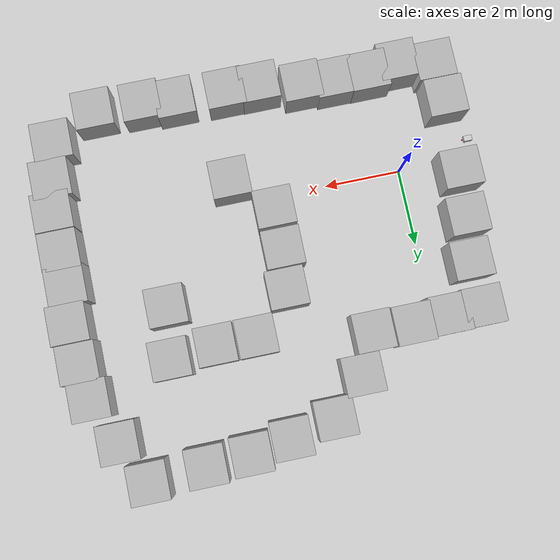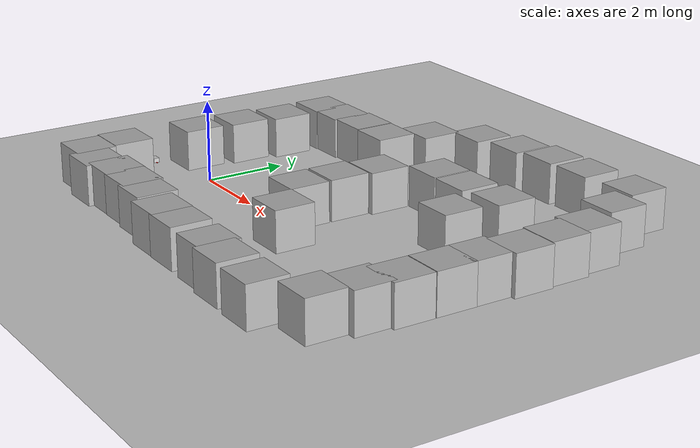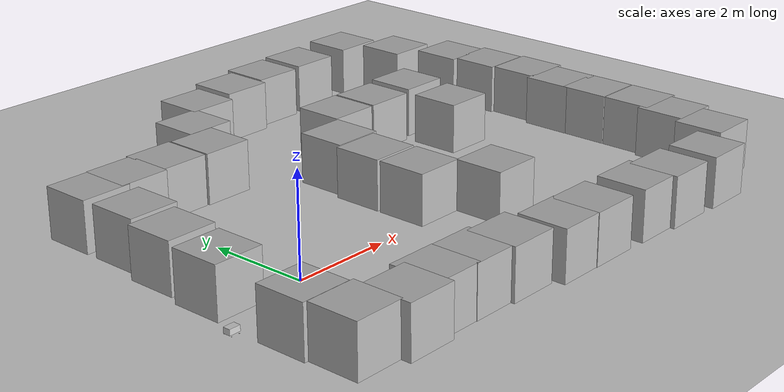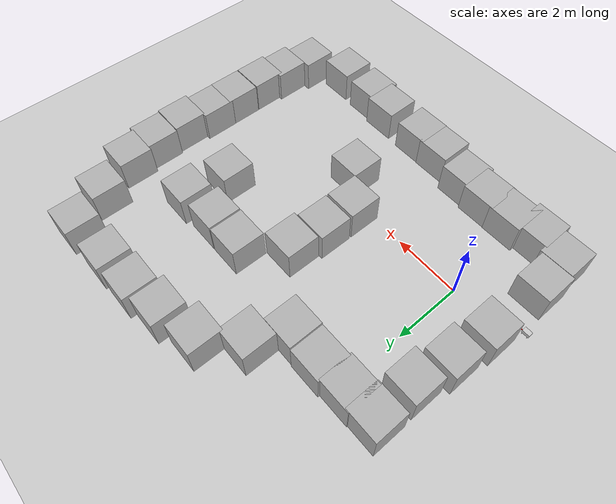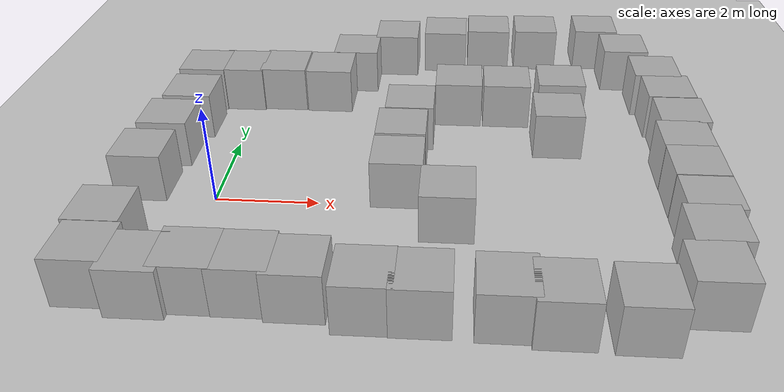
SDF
<?xml version="1.0"?>
<sdf version="1.6">
  <world name="default">

    <plugin
      filename="gz-sim-physics-system"
      name="gz::sim::systems::Physics">
    </plugin>
    <plugin
      filename="gz-sim-user-commands-system"
      name="gz::sim::systems::UserCommands">
    </plugin>
    <plugin
      filename="gz-sim-scene-broadcaster-system"
      name="gz::sim::systems::SceneBroadcaster">
    </plugin>
    <plugin
      filename="gz-sim-sensors-system"
      name="gz::sim::systems::Sensors">
      <render_engine>ogre2</render_engine>
    </plugin>
    <plugin
      filename="gz-sim-imu-system"
      name="gz::sim::systems::Imu">
    </plugin>
    <include>
      <uri>
        https://fuel.gazebosim.org/1.0/OpenRobotics/models/Ground Plane
      </uri>
    </include>

    <include>
      <uri>
        https://fuel.gazebosim.org/1.0/OpenRobotics/models/Sun
      </uri>
    </include>
    <gui fullscreen='0'>
      <camera name='user_camera'>
        <pose frame=''>0.319654 -0.235002 9.29441 0 1.5138 0.009599</pose>
        <view_controller>orbit</view_controller>
        <projection_type>perspective</projection_type>
      </camera>
      <plugin filename="MinimalScene" name="3D View">
        <gz-gui>
          <title>3D View</title>
          <property type="bool" key="showTitleBar">false</property>
          <property type="string" key="state">docked</property>
        </gz-gui>

        <engine>ogre2</engine>
        <scene>scene</scene>
        <ambient_light>0.4 0.4 0.4</ambient_light>
        <background_color>0.8 0.8 0.8</background_color>
        <camera_pose>0.319654 -0.235002 9.29441 0 1.5138 0.009599</camera_pose>
      </plugin>

      <plugin filename="EntityContextMenuPlugin" name="Entity context menu">
        <gz-gui>
          <property key="state" type="string">floating</property>
          <property key="width" type="double">5</property>
          <property key="height" type="double">5</property>
          <property key="showTitleBar" type="bool">false</property>
        </gz-gui>
      </plugin>
      <plugin filename="GzSceneManager" name="Scene Manager">
        <gz-gui>
          <property key="resizable" type="bool">false</property>
          <property key="width" type="double">5</property>
          <property key="height" type="double">5</property>
          <property key="state" type="string">floating</property>
          <property key="showTitleBar" type="bool">false</property>
        </gz-gui>
      </plugin>
      <plugin filename="InteractiveViewControl" name="Interactive view control">
        <gz-gui>
          <property key="resizable" type="bool">false</property>
          <property key="width" type="double">5</property>
          <property key="height" type="double">5</property>
          <property key="state" type="string">floating</property>
          <property key="showTitleBar" type="bool">false</property>
        </gz-gui>
      </plugin>
      <plugin filename="CameraTracking" name="Camera Tracking">
        <gz-gui>
          <property key="resizable" type="bool">false</property>
          <property key="width" type="double">5</property>
          <property key="height" type="double">5</property>
          <property key="state" type="string">floating</property>
          <property key="showTitleBar" type="bool">false</property>
        </gz-gui>
      </plugin>
      <plugin filename="MarkerManager" name="Marker manager">
        <gz-gui>
          <property key="resizable" type="bool">false</property>
          <property key="width" type="double">5</property>
          <property key="height" type="double">5</property>
          <property key="state" type="string">floating</property>
          <property key="showTitleBar" type="bool">false</property>
        </gz-gui>
      </plugin>
      <plugin filename="SelectEntities" name="Select Entities">
        <gz-gui>
          <property key="resizable" type="bool">false</property>
          <property key="width" type="double">5</property>
          <property key="height" type="double">5</property>
          <property key="state" type="string">floating</property>
          <property key="showTitleBar" type="bool">false</property>
        </gz-gui>
      </plugin>

      <plugin filename="Spawn" name="Spawn Entities">
        <gz-gui>
          <property key="resizable" type="bool">false</property>
          <property key="width" type="double">5</property>
          <property key="height" type="double">5</property>
          <property key="state" type="string">floating</property>
          <property key="showTitleBar" type="bool">false</property>
        </gz-gui>
      </plugin>

      <plugin filename="VisualizationCapabilities" name="Visualization Capabilities">
        <gz-gui>
          <property key="resizable" type="bool">false</property>
          <property key="width" type="double">5</property>
          <property key="height" type="double">5</property>
          <property key="state" type="string">floating</property>
          <property key="showTitleBar" type="bool">false</property>
        </gz-gui>
      </plugin>

      <!-- World control -->
      <plugin filename="WorldControl" name="World control">
        <gz-gui>
          <title>World control</title>
          <property type="bool" key="showTitleBar">false</property>
          <property type="bool" key="resizable">false</property>
          <property type="double" key="height">72</property>
          <property type="double" key="z">1</property>

          <property type="string" key="state">floating</property>
          <anchors target="3D View">
            <line own="left" target="left"/>
            <line own="bottom" target="bottom"/>
          </anchors>
        </gz-gui>

        <play_pause>true</play_pause>
        <step>true</step>
        <start_paused>true</start_paused>
        <use_event>true</use_event>

      </plugin>

      <!-- World statistics -->
      <plugin filename="WorldStats" name="World stats">
        <gz-gui>
          <title>World stats</title>
          <property type="bool" key="showTitleBar">false</property>
          <property type="bool" key="resizable">false</property>
          <property type="double" key="height">110</property>
          <property type="double" key="width">290</property>
          <property type="double" key="z">1</property>

          <property type="string" key="state">floating</property>
          <anchors target="3D View">
            <line own="right" target="right"/>
            <line own="bottom" target="bottom"/>
          </anchors>
        </gz-gui>

        <sim_time>true</sim_time>
        <real_time>true</real_time>
        <real_time_factor>true</real_time_factor>
        <iterations>true</iterations>
      </plugin>

      <!-- Insert simple shapes -->
      <plugin filename="Shapes" name="Shapes">
        <gz-gui>
          <property key="resizable" type="bool">false</property>
          <property key="x" type="double">0</property>
          <property key="y" type="double">0</property>
          <property key="width" type="double">250</property>
          <property key="height" type="double">50</property>
          <property key="state" type="string">floating</property>
          <property key="showTitleBar" type="bool">false</property>
          <property key="cardBackground" type="string">#666666</property>
        </gz-gui>
      </plugin>

      <!-- Insert lights -->
      <plugin filename="Lights" name="Lights">
        <gz-gui>
          <property key="resizable" type="bool">false</property>
          <property key="x" type="double">250</property>
          <property key="y" type="double">0</property>
          <property key="width" type="double">150</property>
          <property key="height" type="double">50</property>
          <property key="state" type="string">floating</property>
          <property key="showTitleBar" type="bool">false</property>
          <property key="cardBackground" type="string">#666666</property>
        </gz-gui>
      </plugin>

      <!-- Translate / rotate -->
      <plugin filename="TransformControl" name="Transform control">
        <gz-gui>
          <property key="resizable" type="bool">false</property>
          <property key="x" type="double">0</property>
          <property key="y" type="double">50</property>
          <property key="width" type="double">250</property>
          <property key="height" type="double">50</property>
          <property key="state" type="string">floating</property>
          <property key="showTitleBar" type="bool">false</property>
          <property key="cardBackground" type="string">#777777</property>
        </gz-gui>
      </plugin>

      <!-- Screenshot -->
      <plugin filename="Screenshot" name="Screenshot">
        <gz-gui>
          <property key="resizable" type="bool">false</property>
          <property key="x" type="double">250</property>
          <property key="y" type="double">50</property>
          <property key="width" type="double">50</property>
          <property key="height" type="double">50</property>
          <property key="state" type="string">floating</property>
          <property key="showTitleBar" type="bool">false</property>
          <property key="cardBackground" type="string">#777777</property>
        </gz-gui>
      </plugin>

      <!-- Copy/Paste -->
      <plugin filename="CopyPaste" name="CopyPaste">
        <gz-gui>
          <property key="resizable" type="bool">false</property>
          <property key="x" type="double">300</property>
          <property key="y" type="double">50</property>
          <property key="width" type="double">100</property>
          <property key="height" type="double">50</property>
          <property key="state" type="string">floating</property>
          <property key="showTitleBar" type="bool">false</property>
          <property key="cardBackground" type="string">#777777</property>
        </gz-gui>
      </plugin>

      <!-- Inspector -->
      <plugin filename="ComponentInspector" name="Component inspector">
        <gz-gui>
          <property type="bool" key="showTitleBar">false</property>
          <property type="string" key="state">docked</property>
        </gz-gui>
      </plugin>

      <!-- Entity tree -->
      <plugin filename="EntityTree" name="Entity tree">
        <gz-gui>
          <property type="bool" key="showTitleBar">false</property>
          <property type="string" key="state">docked</property>
        </gz-gui>
      </plugin>
    </gui>

    <physics type="ode">
      <real_time_update_rate>1000.0</real_time_update_rate>
      <max_step_size>0.001</max_step_size>
      <real_time_factor>1</real_time_factor>
      <ode>
        <solver>
          <type>quick</type>
          <iters>150</iters>
          <precon_iters>0</precon_iters>
          <sor>1.400000</sor>
          <use_dynamic_moi_rescaling>1</use_dynamic_moi_rescaling>
        </solver>
        <constraints>
          <cfm>0.00001</cfm>
          <erp>0.2</erp>
          <contact_max_correcting_vel>2000.000000</contact_max_correcting_vel>
          <contact_surface_layer>0.01000</contact_surface_layer>
        </constraints>
      </ode>
    </physics>

    <model name='box'>
      <pose>3.6079806462820692 2.5253344699081568 0.5 0 0 0</pose>
      <link name='box_link'>
        <inertial>
          <inertia>
            <ixx>0.16666</ixx>
            <ixy>0</ixy>
            <ixz>0</ixz>
            <iyy>0.16666</iyy>
            <iyz>0</iyz>
            <izz>0.16666</izz>
          </inertia>
          <mass>1</mass>
          <pose>0 0 0 0 0 0</pose>
        </inertial>
        <collision name='box_collision'>
          <geometry>
            <box>
              <size>1 1 1</size>
            </box>
          </geometry>
          <surface>
            <friction>
              <ode/>
            </friction>
            <bounce/>
            <contact/>
          </surface>
        </collision>
        <visual name='box_visual'>
          <geometry>
            <box>
              <size>1 1 1</size>
            </box>
          </geometry>
          <material>
            <ambient>0.300000012 0.300000012 0.300000012 1</ambient>
            <diffuse>0.699999988 0.699999988 0.699999988 1</diffuse>
            <specular>1 1 1 1</specular>
          </material>
        </visual>
        <pose>0 0 0 0 0 0</pose>
        <enable_wind>false</enable_wind>
      </link>
      <static>false</static>
      <self_collide>false</self_collide>
    </model>
    <model name='box_0'>
      <pose>3.494922661512998 1.4978176082880186 0.5 0 0 0</pose>
      <link name='box_link'>
        <inertial>
          <inertia>
            <ixx>0.16666</ixx>
            <ixy>0</ixy>
            <ixz>0</ixz>
            <iyy>0.16666</iyy>
            <iyz>0</iyz>
            <izz>0.16666</izz>
          </inertia>
          <mass>1</mass>
          <pose>0 0 0 0 0 0</pose>
        </inertial>
        <collision name='box_collision'>
          <geometry>
            <box>
              <size>1 1 1</size>
            </box>
          </geometry>
          <surface>
            <friction>
              <ode/>
            </friction>
            <bounce/>
            <contact/>
          </surface>
        </collision>
        <visual name='box_visual'>
          <geometry>
            <box>
              <size>1 1 1</size>
            </box>
          </geometry>
          <material>
            <ambient>0.300000012 0.300000012 0.300000012 1</ambient>
            <diffuse>0.699999988 0.699999988 0.699999988 1</diffuse>
            <specular>1 1 1 1</specular>
          </material>
        </visual>
        <pose>0 0 0 0 0 0</pose>
        <enable_wind>false</enable_wind>
      </link>
      <static>false</static>
      <self_collide>false</self_collide>
    </model>
    <model name='box_1'>
      <pose>3.4949225119613967 0.43225630653054864 0.5 0 0 0</pose>
      <link name='box_link'>
        <inertial>
          <inertia>
            <ixx>0.16666</ixx>
            <ixy>0</ixy>
            <ixz>0</ixz>
            <iyy>0.16666</iyy>
            <iyz>0</iyz>
            <izz>0.16666</izz>
          </inertia>
          <mass>1</mass>
          <pose>0 0 0 0 0 0</pose>
        </inertial>
        <collision name='box_collision'>
          <geometry>
            <box>
              <size>1 1 1</size>
            </box>
          </geometry>
          <surface>
            <friction>
              <ode/>
            </friction>
            <bounce/>
            <contact/>
          </surface>
        </collision>
        <visual name='box_visual'>
          <geometry>
            <box>
              <size>1 1 1</size>
            </box>
          </geometry>
          <material>
            <ambient>0.300000012 0.300000012 0.300000012 1</ambient>
            <diffuse>0.699999988 0.699999988 0.699999988 1</diffuse>
            <specular>1 1 1 1</specular>
          </material>
        </visual>
        <pose>0 0 0 0 0 0</pose>
        <enable_wind>false</enable_wind>
      </link>
      <static>false</static>
      <self_collide>false</self_collide>
    </model>
    <model name='box_2'>
      <pose>4.4630594434975066 -0.55153767207256765 0.5 0 0 0</pose>
      <link name='box_link'>
        <inertial>
          <inertia>
            <ixx>0.16666</ixx>
            <ixy>0</ixy>
            <ixz>0</ixz>
            <iyy>0.16666</iyy>
            <iyz>0</iyz>
            <izz>0.16666</izz>
          </inertia>
          <mass>1</mass>
          <pose>0 0 0 0 0 0</pose>
        </inertial>
        <collision name='box_collision'>
          <geometry>
            <box>
              <size>1 1 1</size>
            </box>
          </geometry>
          <surface>
            <friction>
              <ode/>
            </friction>
            <bounce/>
            <contact/>
          </surface>
        </collision>
        <visual name='box_visual'>
          <geometry>
            <box>
              <size>1 1 1</size>
            </box>
          </geometry>
          <material>
            <ambient>0.300000012 0.300000012 0.300000012 1</ambient>
            <diffuse>0.699999988 0.699999988 0.699999988 1</diffuse>
            <specular>1 1 1 1</specular>
          </material>
        </visual>
        <pose>0 0 0 0 0 0</pose>
        <enable_wind>false</enable_wind>
      </link>
      <static>false</static>
      <self_collide>false</self_collide>
    </model>
    <model name='box_3'>
      <pose>4.6129606843978133 3.5565113103014911 0.5 0 0 0</pose>
      <link name='box_link'>
        <inertial>
          <inertia>
            <ixx>0.16666</ixx>
            <ixy>0</ixy>
            <ixz>0</ixz>
            <iyy>0.16666</iyy>
            <iyz>0</iyz>
            <izz>0.16666</izz>
          </inertia>
          <mass>1</mass>
          <pose>0 0 0 0 0 0</pose>
        </inertial>
        <collision name='box_collision'>
          <geometry>
            <box>
              <size>1 1 1</size>
            </box>
          </geometry>
          <surface>
            <friction>
              <ode/>
            </friction>
            <bounce/>
            <contact/>
          </surface>
        </collision>
        <visual name='box_visual'>
          <geometry>
            <box>
              <size>1 1 1</size>
            </box>
          </geometry>
          <material>
            <ambient>0.300000012 0.300000012 0.300000012 1</ambient>
            <diffuse>0.699999988 0.699999988 0.699999988 1</diffuse>
            <specular>1 1 1 1</specular>
          </material>
        </visual>
        <pose>0 0 0 0 0 0</pose>
        <enable_wind>false</enable_wind>
      </link>
      <static>false</static>
      <self_collide>false</self_collide>
    </model>
    <model name='box_4'>
      <pose>1.7010573270226828 4.030552841706303 0.5 0 0 0</pose>
      <link name='box_link'>
        <inertial>
          <inertia>
            <ixx>0.16666</ixx>
            <ixy>0</ixy>
            <ixz>0</ixz>
            <iyy>0.16666</iyy>
            <iyz>0</iyz>
            <izz>0.16666</izz>
          </inertia>
          <mass>1</mass>
          <pose>0 0 0 0 0 0</pose>
        </inertial>
        <collision name='box_collision'>
          <geometry>
            <box>
              <size>1 1 1</size>
            </box>
          </geometry>
          <surface>
            <friction>
              <ode/>
            </friction>
            <bounce/>
            <contact/>
          </surface>
        </collision>
        <visual name='box_visual'>
          <geometry>
            <box>
              <size>1 1 1</size>
            </box>
          </geometry>
          <material>
            <ambient>0.300000012 0.300000012 0.300000012 1</ambient>
            <diffuse>0.699999988 0.699999988 0.699999988 1</diffuse>
            <specular>1 1 1 1</specular>
          </material>
        </visual>
        <pose>0 0 0 0 0 0</pose>
        <enable_wind>false</enable_wind>
      </link>
      <static>false</static>
      <self_collide>false</self_collide>
    </model>
    <model name='box_5'>
      <pose>1.2582054842673047 -2.6145004932012856 0.5 0 0 0</pose>
      <link name='box_link'>
        <inertial>
          <inertia>
            <ixx>0.16666</ixx>
            <ixy>0</ixy>
            <ixz>0</ixz>
            <iyy>0.16666</iyy>
            <iyz>0</iyz>
            <izz>0.16666</izz>
          </inertia>
          <mass>1</mass>
          <pose>0 0 0 0 0 0</pose>
        </inertial>
        <collision name='box_collision'>
          <geometry>
            <box>
              <size>1 1 1</size>
            </box>
          </geometry>
          <surface>
            <friction>
              <ode/>
            </friction>
            <bounce/>
            <contact/>
          </surface>
        </collision>
        <visual name='box_visual'>
          <geometry>
            <box>
              <size>1 1 1</size>
            </box>
          </geometry>
          <material>
            <ambient>0.300000012 0.300000012 0.300000012 1</ambient>
            <diffuse>0.699999988 0.699999988 0.699999988 1</diffuse>
            <specular>1 1 1 1</specular>
          </material>
        </visual>
        <pose>0 0 0 0 0 0</pose>
        <enable_wind>false</enable_wind>
      </link>
      <static>false</static>
      <self_collide>false</self_collide>
    </model>
    <model name='box_6'>
      <pose>0.6706154942855127 4.0535003850697073 0.5 0 0 0</pose>
      <link name='box_link'>
        <inertial>
          <inertia>
            <ixx>0.16666</ixx>
            <ixy>0</ixy>
            <ixz>0</ixz>
            <iyy>0.16666</iyy>
            <iyz>0</iyz>
            <izz>0.16666</izz>
          </inertia>
          <mass>1</mass>
          <pose>0 0 0 0 0 0</pose>
        </inertial>
        <collision name='box_collision'>
          <geometry>
            <box>
              <size>1 1 1</size>
            </box>
          </geometry>
          <surface>
            <friction>
              <ode/>
            </friction>
            <bounce/>
            <contact/>
          </surface>
        </collision>
        <visual name='box_visual'>
          <geometry>
            <box>
              <size>1 1 1</size>
            </box>
          </geometry>
          <material>
            <ambient>0.300000012 0.300000012 0.300000012 1</ambient>
            <diffuse>0.699999988 0.699999988 0.699999988 1</diffuse>
            <specular>1 1 1 1</specular>
          </material>
        </visual>
        <pose>0 0 0 0 0 0</pose>
        <enable_wind>false</enable_wind>
      </link>
      <static>false</static>
      <self_collide>false</self_collide>
    </model>
    <model name='box_7'>
      <pose>-0.28243669711069896 3.998690358394934 0.5 0 0 0</pose>
      <link name='box_link'>
        <inertial>
          <inertia>
            <ixx>0.16666</ixx>
            <ixy>0</ixy>
            <ixz>0</ixz>
            <iyy>0.16666</iyy>
            <iyz>0</iyz>
            <izz>0.16666</izz>
          </inertia>
          <mass>1</mass>
          <pose>0 0 0 0 0 0</pose>
        </inertial>
        <collision name='box_collision'>
          <geometry>
            <box>
              <size>1 1 1</size>
            </box>
          </geometry>
          <surface>
            <friction>
              <ode/>
            </friction>
            <bounce/>
            <contact/>
          </surface>
        </collision>
        <visual name='box_visual'>
          <geometry>
            <box>
              <size>1 1 1</size>
            </box>
          </geometry>
          <material>
            <ambient>0.300000012 0.300000012 0.300000012 1</ambient>
            <diffuse>0.699999988 0.699999988 0.699999988 1</diffuse>
            <specular>1 1 1 1</specular>
          </material>
        </visual>
        <pose>0 0 0 0 0 0</pose>
        <enable_wind>false</enable_wind>
      </link>
      <static>false</static>
      <self_collide>false</self_collide>
    </model>
    <model name='box_8'>
      <pose>2.1924004107482391 5.0349059945521963 0.5 0 0 0</pose>
      <link name='box_link'>
        <inertial>
          <inertia>
            <ixx>0.16666</ixx>
            <ixy>0</ixy>
            <ixz>0</ixz>
            <iyy>0.16666</iyy>
            <iyz>0</iyz>
            <izz>0.16666</izz>
          </inertia>
          <mass>1</mass>
          <pose>0 0 0 0 0 0</pose>
        </inertial>
        <collision name='box_collision'>
          <geometry>
            <box>
              <size>1 1 1</size>
            </box>
          </geometry>
          <surface>
            <friction>
              <ode/>
            </friction>
            <bounce/>
            <contact/>
          </surface>
        </collision>
        <visual name='box_visual'>
          <geometry>
            <box>
              <size>1 1 1</size>
            </box>
          </geometry>
          <material>
            <ambient>0.300000012 0.300000012 0.300000012 1</ambient>
            <diffuse>0.699999988 0.699999988 0.699999988 1</diffuse>
            <specular>1 1 1 1</specular>
          </material>
        </visual>
        <pose>0 0 0 0 0 0</pose>
        <enable_wind>false</enable_wind>
      </link>
      <static>false</static>
      <self_collide>false</self_collide>
    </model>
    <model name='box_9'>
      <pose>3.0943881696765345 5.935421168770171 0.5 0 0 0</pose>
      <link name='box_link'>
        <inertial>
          <inertia>
            <ixx>0.16666</ixx>
            <ixy>0</ixy>
            <ixz>0</ixz>
            <iyy>0.16666</iyy>
            <iyz>0</iyz>
            <izz>0.16666</izz>
          </inertia>
          <mass>1</mass>
          <pose>0 0 0 0 0 0</pose>
        </inertial>
        <collision name='box_collision'>
          <geometry>
            <box>
              <size>1 1 1</size>
            </box>
          </geometry>
          <surface>
            <friction>
              <ode/>
            </friction>
            <bounce/>
            <contact/>
          </surface>
        </collision>
        <visual name='box_visual'>
          <geometry>
            <box>
              <size>1 1 1</size>
            </box>
          </geometry>
          <material>
            <ambient>0.300000012 0.300000012 0.300000012 1</ambient>
            <diffuse>0.699999988 0.699999988 0.699999988 1</diffuse>
            <specular>1 1 1 1</specular>
          </material>
        </visual>
        <pose>0 0 0 0 0 0</pose>
        <enable_wind>false</enable_wind>
      </link>
      <static>false</static>
      <self_collide>false</self_collide>
    </model>
    <model name='box_10'>
      <pose>4.2585700037728076 6.2045571536851858 0.5 0 0 0</pose>
      <link name='box_link'>
        <inertial>
          <inertia>
            <ixx>0.16666</ixx>
            <ixy>0</ixy>
            <ixz>0</ixz>
            <iyy>0.16666</iyy>
            <iyz>0</iyz>
            <izz>0.16666</izz>
          </inertia>
          <mass>1</mass>
          <pose>0 0 0 0 0 0</pose>
        </inertial>
        <collision name='box_collision'>
          <geometry>
            <box>
              <size>1 1 1</size>
            </box>
          </geometry>
          <surface>
            <friction>
              <ode/>
            </friction>
            <bounce/>
            <contact/>
          </surface>
        </collision>
        <visual name='box_visual'>
          <geometry>
            <box>
              <size>1 1 1</size>
            </box>
          </geometry>
          <material>
            <ambient>0.300000012 0.300000012 0.300000012 1</ambient>
            <diffuse>0.699999988 0.699999988 0.699999988 1</diffuse>
            <specular>1 1 1 1</specular>
          </material>
        </visual>
        <pose>0 0 0 0 0 0</pose>
        <enable_wind>false</enable_wind>
      </link>
      <static>false</static>
      <self_collide>false</self_collide>
    </model>
    <model name='box_11'>
      <pose>5.3105900201871208 6.3755920427107595 0.5 0 0 0</pose>
      <link name='box_link'>
        <inertial>
          <inertia>
            <ixx>0.16666</ixx>
            <ixy>0</ixy>
            <ixz>0</ixz>
            <iyy>0.16666</iyy>
            <iyz>0</iyz>
            <izz>0.16666</izz>
          </inertia>
          <mass>1</mass>
          <pose>0 0 0 0 0 0</pose>
        </inertial>
        <collision name='box_collision'>
          <geometry>
            <box>
              <size>1 1 1</size>
            </box>
          </geometry>
          <surface>
            <friction>
              <ode/>
            </friction>
            <bounce/>
            <contact/>
          </surface>
        </collision>
        <visual name='box_visual'>
          <geometry>
            <box>
              <size>1 1 1</size>
            </box>
          </geometry>
          <material>
            <ambient>0.300000012 0.300000012 0.300000012 1</ambient>
            <diffuse>0.699999988 0.699999988 0.699999988 1</diffuse>
            <specular>1 1 1 1</specular>
          </material>
        </visual>
        <pose>0 0 0 0 0 0</pose>
        <enable_wind>false</enable_wind>
      </link>
      <static>false</static>
      <self_collide>false</self_collide>
    </model>
    <model name='box_12'>
      <pose>5.6576209379890132 3.5563111186137712 0.5 0 0 0</pose>
      <link name='box_link'>
        <inertial>
          <inertia>
            <ixx>0.16666</ixx>
            <ixy>0</ixy>
            <ixz>0</ixz>
            <iyy>0.16666</iyy>
            <iyz>0</iyz>
            <izz>0.16666</izz>
          </inertia>
          <mass>1</mass>
          <pose>0 0 0 0 0 0</pose>
        </inertial>
        <collision name='box_collision'>
          <geometry>
            <box>
              <size>1 1 1</size>
            </box>
          </geometry>
          <surface>
            <friction>
              <ode/>
            </friction>
            <bounce/>
            <contact/>
          </surface>
        </collision>
        <visual name='box_visual'>
          <geometry>
            <box>
              <size>1 1 1</size>
            </box>
          </geometry>
          <material>
            <ambient>0.300000012 0.300000012 0.300000012 1</ambient>
            <diffuse>0.699999988 0.699999988 0.699999988 1</diffuse>
            <specular>1 1 1 1</specular>
          </material>
        </visual>
        <pose>0 0 0 0 0 0</pose>
        <enable_wind>false</enable_wind>
      </link>
      <static>false</static>
      <self_collide>false</self_collide>
    </model>
    <model name='box_13'>
      <pose>6.8445238250185234 3.6716367676928829 0.5 0 0 0</pose>
      <link name='box_link'>
        <inertial>
          <inertia>
            <ixx>0.16666</ixx>
            <ixy>0</ixy>
            <ixz>0</ixz>
            <iyy>0.16666</iyy>
            <iyz>0</iyz>
            <izz>0.16666</izz>
          </inertia>
          <mass>1</mass>
          <pose>0 0 0 0 0 0</pose>
        </inertial>
        <collision name='box_collision'>
          <geometry>
            <box>
              <size>1 1 1</size>
            </box>
          </geometry>
          <surface>
            <friction>
              <ode/>
            </friction>
            <bounce/>
            <contact/>
          </surface>
        </collision>
        <visual name='box_visual'>
          <geometry>
            <box>
              <size>1 1 1</size>
            </box>
          </geometry>
          <material>
            <ambient>0.300000012 0.300000012 0.300000012 1</ambient>
            <diffuse>0.699999988 0.699999988 0.699999988 1</diffuse>
            <specular>1 1 1 1</specular>
          </material>
        </visual>
        <pose>0 0 0 0 0 0</pose>
        <enable_wind>false</enable_wind>
      </link>
      <static>false</static>
      <self_collide>false</self_collide>
    </model>
    <model name='box_14'>
      <pose>6.6850749643542642 2.3500961326875913 0.5 0 0 0</pose>
      <link name='box_link'>
        <inertial>
          <inertia>
            <ixx>0.16666</ixx>
            <ixy>0</ixy>
            <ixz>0</ixz>
            <iyy>0.16666</iyy>
            <iyz>0</iyz>
            <izz>0.16666</izz>
          </inertia>
          <mass>1</mass>
          <pose>0 0 0 0 0 0</pose>
        </inertial>
        <collision name='box_collision'>
          <geometry>
            <box>
              <size>1 1 1</size>
            </box>
          </geometry>
          <surface>
            <friction>
              <ode/>
            </friction>
            <bounce/>
            <contact/>
          </surface>
        </collision>
        <visual name='box_visual'>
          <geometry>
            <box>
              <size>1 1 1</size>
            </box>
          </geometry>
          <material>
            <ambient>0.300000012 0.300000012 0.300000012 1</ambient>
            <diffuse>0.699999988 0.699999988 0.699999988 1</diffuse>
            <specular>1 1 1 1</specular>
          </material>
        </visual>
        <pose>0 0 0 0 0 0</pose>
        <enable_wind>false</enable_wind>
      </link>
      <static>false</static>
      <self_collide>false</self_collide>
    </model>
    <model name='box_15'>
      <pose>6.4658853912472667 6.4337428037039084 0.5 0 0 0</pose>
      <link name='box_link'>
        <inertial>
          <inertia>
            <ixx>0.16666</ixx>
            <ixy>0</ixy>
            <ixz>0</ixz>
            <iyy>0.16666</iyy>
            <iyz>0</iyz>
            <izz>0.16666</izz>
          </inertia>
          <mass>1</mass>
          <pose>0 0 0 0 0 0</pose>
        </inertial>
        <collision name='box_collision'>
          <geometry>
            <box>
              <size>1 1 1</size>
            </box>
          </geometry>
          <surface>
            <friction>
              <ode/>
            </friction>
            <bounce/>
            <contact/>
          </surface>
        </collision>
        <visual name='box_visual'>
          <geometry>
            <box>
              <size>1 1 1</size>
            </box>
          </geometry>
          <material>
            <ambient>0.300000012 0.300000012 0.300000012 1</ambient>
            <diffuse>0.699999988 0.699999988 0.699999988 1</diffuse>
            <specular>1 1 1 1</specular>
          </material>
        </visual>
        <pose>0 0 0 0 0 0</pose>
        <enable_wind>false</enable_wind>
      </link>
      <static>false</static>
      <self_collide>false</self_collide>
    </model>
    <model name='box_16'>
      <pose>7.9377326440930922 6.5307673034264573 0.5 0 0 0</pose>
      <link name='box_link'>
        <inertial>
          <inertia>
            <ixx>0.16666</ixx>
            <ixy>0</ixy>
            <ixz>0</ixz>
            <iyy>0.16666</iyy>
            <iyz>0</iyz>
            <izz>0.16666</izz>
          </inertia>
          <mass>1</mass>
          <pose>0 0 0 0 0 0</pose>
        </inertial>
        <collision name='box_collision'>
          <geometry>
            <box>
              <size>1 1 1</size>
            </box>
          </geometry>
          <surface>
            <friction>
              <ode/>
            </friction>
            <bounce/>
            <contact/>
          </surface>
        </collision>
        <visual name='box_visual'>
          <geometry>
            <box>
              <size>1 1 1</size>
            </box>
          </geometry>
          <material>
            <ambient>0.300000012 0.300000012 0.300000012 1</ambient>
            <diffuse>0.699999988 0.699999988 0.699999988 1</diffuse>
            <specular>1 1 1 1</specular>
          </material>
        </visual>
        <pose>0 0 0 0 0 0</pose>
        <enable_wind>false</enable_wind>
      </link>
      <static>false</static>
      <self_collide>false</self_collide>
    </model>
    <model name='box_17'>
      <pose>8.489075274650741 5.4324560446104639 0.5 0 0 0</pose>
      <link name='box_link'>
        <inertial>
          <inertia>
            <ixx>0.16666</ixx>
            <ixy>0</ixy>
            <ixz>0</ixz>
            <iyy>0.16666</iyy>
            <iyz>0</iyz>
            <izz>0.16666</izz>
          </inertia>
          <mass>1</mass>
          <pose>0 0 0 0 0 0</pose>
        </inertial>
        <collision name='box_collision'>
          <geometry>
            <box>
              <size>1 1 1</size>
            </box>
          </geometry>
          <surface>
            <friction>
              <ode/>
            </friction>
            <bounce/>
            <contact/>
          </surface>
        </collision>
        <visual name='box_visual'>
          <geometry>
            <box>
              <size>1 1 1</size>
            </box>
          </geometry>
          <material>
            <ambient>0.300000012 0.300000012 0.300000012 1</ambient>
            <diffuse>0.699999988 0.699999988 0.699999988 1</diffuse>
            <specular>1 1 1 1</specular>
          </material>
        </visual>
        <pose>0 0 0 0 0 0</pose>
        <enable_wind>false</enable_wind>
      </link>
      <static>false</static>
      <self_collide>false</self_collide>
    </model>
    <model name='box_18'>
      <pose>8.9993868971396527 4.2652200928359667 0.5 0 0 0</pose>
      <link name='box_link'>
        <inertial>
          <inertia>
            <ixx>0.16666</ixx>
            <ixy>0</ixy>
            <ixz>0</ixz>
            <iyy>0.16666</iyy>
            <iyz>0</iyz>
            <izz>0.16666</izz>
          </inertia>
          <mass>1</mass>
          <pose>0 0 0 0 0 0</pose>
        </inertial>
        <collision name='box_collision'>
          <geometry>
            <box>
              <size>1 1 1</size>
            </box>
          </geometry>
          <surface>
            <friction>
              <ode/>
            </friction>
            <bounce/>
            <contact/>
          </surface>
        </collision>
        <visual name='box_visual'>
          <geometry>
            <box>
              <size>1 1 1</size>
            </box>
          </geometry>
          <material>
            <ambient>0.300000012 0.300000012 0.300000012 1</ambient>
            <diffuse>0.699999988 0.699999988 0.699999988 1</diffuse>
            <specular>1 1 1 1</specular>
          </material>
        </visual>
        <pose>0 0 0 0 0 0</pose>
        <enable_wind>false</enable_wind>
      </link>
      <static>false</static>
      <self_collide>false</self_collide>
    </model>
    <model name='box_19'>
      <pose>9.1200137525792453 3.3051426735149634 0.5 0 0 0</pose>
      <link name='box_link'>
        <inertial>
          <inertia>
            <ixx>0.16666</ixx>
            <ixy>0</ixy>
            <ixz>0</ixz>
            <iyy>0.16666</iyy>
            <iyz>0</iyz>
            <izz>0.16666</izz>
          </inertia>
          <mass>1</mass>
          <pose>0 0 0 0 0 0</pose>
        </inertial>
        <collision name='box_collision'>
          <geometry>
            <box>
              <size>1 1 1</size>
            </box>
          </geometry>
          <surface>
            <friction>
              <ode/>
            </friction>
            <bounce/>
            <contact/>
          </surface>
        </collision>
        <visual name='box_visual'>
          <geometry>
            <box>
              <size>1 1 1</size>
            </box>
          </geometry>
          <material>
            <ambient>0.300000012 0.300000012 0.300000012 1</ambient>
            <diffuse>0.699999988 0.699999988 0.699999988 1</diffuse>
            <specular>1 1 1 1</specular>
          </material>
        </visual>
        <pose>0 0 0 0 0 0</pose>
        <enable_wind>false</enable_wind>
      </link>
      <static>false</static>
      <self_collide>false</self_collide>
    </model>
    <model name='box_20'>
      <pose>9.1841314681459441 2.2883809486798574 0.5 0 0 0</pose>
      <link name='box_link'>
        <inertial>
          <inertia>
            <ixx>0.16666</ixx>
            <ixy>0</ixy>
            <ixz>0</ixz>
            <iyy>0.16666</iyy>
            <iyz>0</iyz>
            <izz>0.16666</izz>
          </inertia>
          <mass>1</mass>
          <pose>0 0 0 0 0 0</pose>
        </inertial>
        <collision name='box_collision'>
          <geometry>
            <box>
              <size>1 1 1</size>
            </box>
          </geometry>
          <surface>
            <friction>
              <ode/>
            </friction>
            <bounce/>
            <contact/>
          </surface>
        </collision>
        <visual name='box_visual'>
          <geometry>
            <box>
              <size>1 1 1</size>
            </box>
          </geometry>
          <material>
            <ambient>0.300000012 0.300000012 0.300000012 1</ambient>
            <diffuse>0.699999988 0.699999988 0.699999988 1</diffuse>
            <specular>1 1 1 1</specular>
          </material>
        </visual>
        <pose>0 0 0 0 0 0</pose>
        <enable_wind>false</enable_wind>
      </link>
      <static>false</static>
      <self_collide>false</self_collide>
    </model>
    <model name='box_21'>
      <pose>9.063379541916289 1.3298336882098427 0.5 0 0 0</pose>
      <link name='box_link'>
        <inertial>
          <inertia>
            <ixx>0.16666</ixx>
            <ixy>0</ixy>
            <ixz>0</ixz>
            <iyy>0.16666</iyy>
            <iyz>0</iyz>
            <izz>0.16666</izz>
          </inertia>
          <mass>1</mass>
          <pose>0 0 0 0 0 0</pose>
        </inertial>
        <collision name='box_collision'>
          <geometry>
            <box>
              <size>1 1 1</size>
            </box>
          </geometry>
          <surface>
            <friction>
              <ode/>
            </friction>
            <bounce/>
            <contact/>
          </surface>
        </collision>
        <visual name='box_visual'>
          <geometry>
            <box>
              <size>1 1 1</size>
            </box>
          </geometry>
          <material>
            <ambient>0.300000012 0.300000012 0.300000012 1</ambient>
            <diffuse>0.699999988 0.699999988 0.699999988 1</diffuse>
            <specular>1 1 1 1</specular>
          </material>
        </visual>
        <pose>0 0 0 0 0 0</pose>
        <enable_wind>false</enable_wind>
      </link>
      <static>false</static>
      <self_collide>false</self_collide>
    </model>
    <model name='box_22'>
      <pose>9.0692906387283401 0.41422661622399137 0.5 0 0 0</pose>
      <link name='box_link'>
        <inertial>
          <inertia>
            <ixx>0.16666</ixx>
            <ixy>0</ixy>
            <ixz>0</ixz>
            <iyy>0.16666</iyy>
            <iyz>0</iyz>
            <izz>0.16666</izz>
          </inertia>
          <mass>1</mass>
          <pose>0 0 0 0 0 0</pose>
        </inertial>
        <collision name='box_collision'>
          <geometry>
            <box>
              <size>1 1 1</size>
            </box>
          </geometry>
          <surface>
            <friction>
              <ode/>
            </friction>
            <bounce/>
            <contact/>
          </surface>
        </collision>
        <visual name='box_visual'>
          <geometry>
            <box>
              <size>1 1 1</size>
            </box>
          </geometry>
          <material>
            <ambient>0.300000012 0.300000012 0.300000012 1</ambient>
            <diffuse>0.699999988 0.699999988 0.699999988 1</diffuse>
            <specular>1 1 1 1</specular>
          </material>
        </visual>
        <pose>0 0 0 0 0 0</pose>
        <enable_wind>false</enable_wind>
      </link>
      <static>false</static>
      <self_collide>false</self_collide>
    </model>
    <model name='box_23'>
      <pose>9.071077363160498 -0.6060927547291548 0.5 0 0 0</pose>
      <link name='box_link'>
        <inertial>
          <inertia>
            <ixx>0.16666</ixx>
            <ixy>0</ixy>
            <ixz>0</ixz>
            <iyy>0.16666</iyy>
            <iyz>0</iyz>
            <izz>0.16666</izz>
          </inertia>
          <mass>1</mass>
          <pose>0 0 0 0 0 0</pose>
        </inertial>
        <collision name='box_collision'>
          <geometry>
            <box>
              <size>1 1 1</size>
            </box>
          </geometry>
          <surface>
            <friction>
              <ode/>
            </friction>
            <bounce/>
            <contact/>
          </surface>
        </collision>
        <visual name='box_visual'>
          <geometry>
            <box>
              <size>1 1 1</size>
            </box>
          </geometry>
          <material>
            <ambient>0.300000012 0.300000012 0.300000012 1</ambient>
            <diffuse>0.699999988 0.699999988 0.699999988 1</diffuse>
            <specular>1 1 1 1</specular>
          </material>
        </visual>
        <pose>0 0 0 0 0 0</pose>
        <enable_wind>false</enable_wind>
      </link>
      <static>false</static>
      <self_collide>false</self_collide>
    </model>
    <include>
      <uri>model://turtlebot3_burger</uri>
      <name>burger</name>
      <pose>-2 -0.5 0.01 0 0 0</pose>
    </include>
    <model name='box_24'>
      <pose>8.9641439575790862 -1.4589446762157061 0.5 0 0 0</pose>
      <link name='box_link'>
        <inertial>
          <inertia>
            <ixx>0.16666</ixx>
            <ixy>0</ixy>
            <ixz>0</ixz>
            <iyy>0.16666</iyy>
            <iyz>0</iyz>
            <izz>0.16666</izz>
          </inertia>
          <mass>1</mass>
          <pose>0 0 0 0 0 0</pose>
        </inertial>
        <collision name='box_collision'>
          <geometry>
            <box>
              <size>1 1 1</size>
            </box>
          </geometry>
          <surface>
            <friction>
              <ode/>
            </friction>
            <bounce/>
            <contact/>
          </surface>
        </collision>
        <visual name='box_visual'>
          <geometry>
            <box>
              <size>1 1 1</size>
            </box>
          </geometry>
          <material>
            <ambient>0.300000012 0.300000012 0.300000012 1</ambient>
            <diffuse>0.699999988 0.699999988 0.699999988 1</diffuse>
            <specular>1 1 1 1</specular>
          </material>
        </visual>
        <pose>0 0 0 0 0 0</pose>
        <enable_wind>false</enable_wind>
      </link>
      <static>false</static>
      <self_collide>false</self_collide>
    </model>
    <model name='box_25'>
      <pose>8.7633956037249163 -2.4458265250856095 0.5 0 0 0</pose>
      <link name='box_link'>
        <inertial>
          <inertia>
            <ixx>0.16666</ixx>
            <ixy>0</ixy>
            <ixz>0</ixz>
            <iyy>0.16666</iyy>
            <iyz>0</iyz>
            <izz>0.16666</izz>
          </inertia>
          <mass>1</mass>
          <pose>0 0 0 0 0 0</pose>
        </inertial>
        <collision name='box_collision'>
          <geometry>
            <box>
              <size>1 1 1</size>
            </box>
          </geometry>
          <surface>
            <friction>
              <ode/>
            </friction>
            <bounce/>
            <contact/>
          </surface>
        </collision>
        <visual name='box_visual'>
          <geometry>
            <box>
              <size>1 1 1</size>
            </box>
          </geometry>
          <material>
            <ambient>0.300000012 0.300000012 0.300000012 1</ambient>
            <diffuse>0.699999988 0.699999988 0.699999988 1</diffuse>
            <specular>1 1 1 1</specular>
          </material>
        </visual>
        <pose>0 0 0 0 0 0</pose>
        <enable_wind>false</enable_wind>
      </link>
      <static>false</static>
      <self_collide>false</self_collide>
    </model>
    <model name='box_26'>
      <pose>7.579220995664274 -3.0548090183081755 0.5 0 0 0</pose>
      <link name='box_link'>
        <inertial>
          <inertia>
            <ixx>0.16666</ixx>
            <ixy>0</ixy>
            <ixz>0</ixz>
            <iyy>0.16666</iyy>
            <iyz>0</iyz>
            <izz>0.16666</izz>
          </inertia>
          <mass>1</mass>
          <pose>0 0 0 0 0 0</pose>
        </inertial>
        <collision name='box_collision'>
          <geometry>
            <box>
              <size>1 1 1</size>
            </box>
          </geometry>
          <surface>
            <friction>
              <ode/>
            </friction>
            <bounce/>
            <contact/>
          </surface>
        </collision>
        <visual name='box_visual'>
          <geometry>
            <box>
              <size>1 1 1</size>
            </box>
          </geometry>
          <material>
            <ambient>0.300000012 0.300000012 0.300000012 1</ambient>
            <diffuse>0.699999988 0.699999988 0.699999988 1</diffuse>
            <specular>1 1 1 1</specular>
          </material>
        </visual>
        <pose>0 0 0 0 0 0</pose>
        <enable_wind>false</enable_wind>
      </link>
      <static>false</static>
      <self_collide>false</self_collide>
    </model>
    <model name='box_27'>
      <pose>6.3311675806246495 -3.0195628458396437 0.5 0 0 0</pose>
      <link name='box_link'>
        <inertial>
          <inertia>
            <ixx>0.16666</ixx>
            <ixy>0</ixy>
            <ixz>0</ixz>
            <iyy>0.16666</iyy>
            <iyz>0</iyz>
            <izz>0.16666</izz>
          </inertia>
          <mass>1</mass>
          <pose>0 0 0 0 0 0</pose>
        </inertial>
        <collision name='box_collision'>
          <geometry>
            <box>
              <size>1 1 1</size>
            </box>
          </geometry>
          <surface>
            <friction>
              <ode/>
            </friction>
            <bounce/>
            <contact/>
          </surface>
        </collision>
        <visual name='box_visual'>
          <geometry>
            <box>
              <size>1 1 1</size>
            </box>
          </geometry>
          <material>
            <ambient>0.300000012 0.300000012 0.300000012 1</ambient>
            <diffuse>0.699999988 0.699999988 0.699999988 1</diffuse>
            <specular>1 1 1 1</specular>
          </material>
        </visual>
        <pose>0 0 0 0 0 0</pose>
        <enable_wind>false</enable_wind>
      </link>
      <static>false</static>
      <self_collide>false</self_collide>
    </model>
    <model name='box_28'>
      <pose>-1.1457118355510982 3.975423221543966 0.5 0 0 0</pose>
      <link name='box_link'>
        <inertial>
          <inertia>
            <ixx>0.16666</ixx>
            <ixy>0</ixy>
            <ixz>0</ixz>
            <iyy>0.16666</iyy>
            <iyz>0</iyz>
            <izz>0.16666</izz>
          </inertia>
          <mass>1</mass>
          <pose>0 0 0 0 0 0</pose>
        </inertial>
        <collision name='box_collision'>
          <geometry>
            <box>
              <size>1 1 1</size>
            </box>
          </geometry>
          <surface>
            <friction>
              <ode/>
            </friction>
            <bounce/>
            <contact/>
          </surface>
        </collision>
        <visual name='box_visual'>
          <geometry>
            <box>
              <size>1 1 1</size>
            </box>
          </geometry>
          <material>
            <ambient>0.300000012 0.300000012 0.300000012 1</ambient>
            <diffuse>0.699999988 0.699999988 0.699999988 1</diffuse>
            <specular>1 1 1 1</specular>
          </material>
        </visual>
        <pose>0 0 0 0 0 0</pose>
        <enable_wind>false</enable_wind>
      </link>
      <static>false</static>
      <self_collide>false</self_collide>
    </model>
    <model name='box_29'>
      <pose>-1.1316562421509426 2.7544080417719612 0.5 0 0 0</pose>
      <link name='box_link'>
        <inertial>
          <inertia>
            <ixx>0.16666</ixx>
            <ixy>0</ixy>
            <ixz>0</ixz>
            <iyy>0.16666</iyy>
            <iyz>0</iyz>
            <izz>0.16666</izz>
          </inertia>
          <mass>1</mass>
          <pose>0 0 0 0 0 0</pose>
        </inertial>
        <collision name='box_collision'>
          <geometry>
            <box>
              <size>1 1 1</size>
            </box>
          </geometry>
          <surface>
            <friction>
              <ode/>
            </friction>
            <bounce/>
            <contact/>
          </surface>
        </collision>
        <visual name='box_visual'>
          <geometry>
            <box>
              <size>1 1 1</size>
            </box>
          </geometry>
          <material>
            <ambient>0.300000012 0.300000012 0.300000012 1</ambient>
            <diffuse>0.699999988 0.699999988 0.699999988 1</diffuse>
            <specular>1 1 1 1</specular>
          </material>
        </visual>
        <pose>0 0 0 0 0 0</pose>
        <enable_wind>false</enable_wind>
      </link>
      <static>false</static>
      <self_collide>false</self_collide>
    </model>
    <model name='box_30'>
      <pose>-1.3026694518100135 1.6236249406001484 0.5 0 0 0</pose>
      <link name='box_link'>
        <inertial>
          <inertia>
            <ixx>0.16666</ixx>
            <ixy>0</ixy>
            <ixz>0</ixz>
            <iyy>0.16666</iyy>
            <iyz>0</iyz>
            <izz>0.16666</izz>
          </inertia>
          <mass>1</mass>
          <pose>0 0 0 0 0 0</pose>
        </inertial>
        <collision name='box_collision'>
          <geometry>
            <box>
              <size>1 1 1</size>
            </box>
          </geometry>
          <surface>
            <friction>
              <ode/>
            </friction>
            <bounce/>
            <contact/>
          </surface>
        </collision>
        <visual name='box_visual'>
          <geometry>
            <box>
              <size>1 1 1</size>
            </box>
          </geometry>
          <material>
            <ambient>0.300000012 0.300000012 0.300000012 1</ambient>
            <diffuse>0.699999988 0.699999988 0.699999988 1</diffuse>
            <specular>1 1 1 1</specular>
          </material>
        </visual>
        <pose>0 0 0 0 0 0</pose>
        <enable_wind>false</enable_wind>
      </link>
      <static>false</static>
      <self_collide>false</self_collide>
    </model>
    <model name='box_31'>
      <pose>-1.4232277877195247 0.40228871558271467 0.5 0 0 0</pose>
      <link name='box_link'>
        <inertial>
          <inertia>
            <ixx>0.16666</ixx>
            <ixy>0</ixy>
            <ixz>0</ixz>
            <iyy>0.16666</iyy>
            <iyz>0</iyz>
            <izz>0.16666</izz>
          </inertia>
          <mass>1</mass>
          <pose>0 0 0 0 0 0</pose>
        </inertial>
        <collision name='box_collision'>
          <geometry>
            <box>
              <size>1 1 1</size>
            </box>
          </geometry>
          <surface>
            <friction>
              <ode/>
            </friction>
            <bounce/>
            <contact/>
          </surface>
        </collision>
        <visual name='box_visual'>
          <geometry>
            <box>
              <size>1 1 1</size>
            </box>
          </geometry>
          <material>
            <ambient>0.300000012 0.300000012 0.300000012 1</ambient>
            <diffuse>0.699999988 0.699999988 0.699999988 1</diffuse>
            <specular>1 1 1 1</specular>
          </material>
        </visual>
        <pose>0 0 0 0 0 0</pose>
        <enable_wind>false</enable_wind>
      </link>
      <static>false</static>
      <self_collide>false</self_collide>
    </model>

    <model name='box_33'>
      <pose>-1.464063267129224 -1.5296316098043177 0.5 0 0 0</pose>
      <link name='box_link'>
        <inertial>
          <inertia>
            <ixx>0.16666</ixx>
            <ixy>0</ixy>
            <ixz>0</ixz>
            <iyy>0.16666</iyy>
            <iyz>0</iyz>
            <izz>0.16666</izz>
          </inertia>
          <mass>1</mass>
          <pose>0 0 0 0 0 0</pose>
        </inertial>
        <collision name='box_collision'>
          <geometry>
            <box>
              <size>1 1 1</size>
            </box>
          </geometry>
          <surface>
            <friction>
              <ode/>
            </friction>
            <bounce/>
            <contact/>
          </surface>
        </collision>
        <visual name='box_visual'>
          <geometry>
            <box>
              <size>1 1 1</size>
            </box>
          </geometry>
          <material>
            <ambient>0.300000012 0.300000012 0.300000012 1</ambient>
            <diffuse>0.699999988 0.699999988 0.699999988 1</diffuse>
            <specular>1 1 1 1</specular>
          </material>
        </visual>
        <pose>0 0 0 0 0 0</pose>
        <enable_wind>false</enable_wind>
      </link>
      <static>false</static>
      <self_collide>false</self_collide>
    </model>
    <model name='box_34'>
      <pose>-1.3922729838475425 -2.5379691192240119 0.5 0 0 0</pose>
      <link name='box_link'>
        <inertial>
          <inertia>
            <ixx>0.16666</ixx>
            <ixy>0</ixy>
            <ixz>0</ixz>
            <iyy>0.16666</iyy>
            <iyz>0</iyz>
            <izz>0.16666</izz>
          </inertia>
          <mass>1</mass>
          <pose>0 0 0 0 0 0</pose>
        </inertial>
        <collision name='box_collision'>
          <geometry>
            <box>
              <size>1 1 1</size>
            </box>
          </geometry>
          <surface>
            <friction>
              <ode/>
            </friction>
            <bounce/>
            <contact/>
          </surface>
        </collision>
        <visual name='box_visual'>
          <geometry>
            <box>
              <size>1 1 1</size>
            </box>
          </geometry>
          <material>
            <ambient>0.300000012 0.300000012 0.300000012 1</ambient>
            <diffuse>0.699999988 0.699999988 0.699999988 1</diffuse>
            <specular>1 1 1 1</specular>
          </material>
        </visual>
        <pose>0 0 0 0 0 0</pose>
        <enable_wind>false</enable_wind>
      </link>
      <static>false</static>
      <self_collide>false</self_collide>
    </model>
    <model name='box_35'>
      <pose>-0.44800022957974539 -2.732336570973886 0.5 0 0 0</pose>
      <link name='box_link'>
        <inertial>
          <inertia>
            <ixx>0.16666</ixx>
            <ixy>0</ixy>
            <ixz>0</ixz>
            <iyy>0.16666</iyy>
            <iyz>0</iyz>
            <izz>0.16666</izz>
          </inertia>
          <mass>1</mass>
          <pose>0 0 0 0 0 0</pose>
        </inertial>
        <collision name='box_collision'>
          <geometry>
            <box>
              <size>1 1 1</size>
            </box>
          </geometry>
          <surface>
            <friction>
              <ode/>
            </friction>
            <bounce/>
            <contact/>
          </surface>
        </collision>
        <visual name='box_visual'>
          <geometry>
            <box>
              <size>1 1 1</size>
            </box>
          </geometry>
          <material>
            <ambient>0.300000012 0.300000012 0.300000012 1</ambient>
            <diffuse>0.699999988 0.699999988 0.699999988 1</diffuse>
            <specular>1 1 1 1</specular>
          </material>
        </visual>
        <pose>0 0 0 0 0 0</pose>
        <enable_wind>false</enable_wind>
      </link>
      <static>false</static>
      <self_collide>false</self_collide>
    </model>
    <model name='box_36'>
      <pose>5.4480319840938094 -2.9299055796140872 0.5 0 0 0</pose>
      <link name='box_link'>
        <inertial>
          <inertia>
            <ixx>0.16666</ixx>
            <ixy>0</ixy>
            <ixz>0</ixz>
            <iyy>0.16666</iyy>
            <iyz>0</iyz>
            <izz>0.16666</izz>
          </inertia>
          <mass>1</mass>
          <pose>0 0 0 0 0 0</pose>
        </inertial>
        <collision name='box_collision'>
          <geometry>
            <box>
              <size>1 1 1</size>
            </box>
          </geometry>
          <surface>
            <friction>
              <ode/>
            </friction>
            <bounce/>
            <contact/>
          </surface>
        </collision>
        <visual name='box_visual'>
          <geometry>
            <box>
              <size>1 1 1</size>
            </box>
          </geometry>
          <material>
            <ambient>0.300000012 0.300000012 0.300000012 1</ambient>
            <diffuse>0.699999988 0.699999988 0.699999988 1</diffuse>
            <specular>1 1 1 1</specular>
          </material>
        </visual>
        <pose>0 0 0 0 0 0</pose>
        <enable_wind>false</enable_wind>
      </link>
      <static>false</static>
      <self_collide>false</self_collide>
    </model>
    <model name='box_37'>
      <pose>4.1178947929945977 -2.9015128966290087 0.5 0 0 0</pose>
      <link name='box_link'>
        <inertial>
          <inertia>
            <ixx>0.16666</ixx>
            <ixy>0</ixy>
            <ixz>0</ixz>
            <iyy>0.16666</iyy>
            <iyz>0</iyz>
            <izz>0.16666</izz>
          </inertia>
          <mass>1</mass>
          <pose>0 0 0 0 0 0</pose>
        </inertial>
        <collision name='box_collision'>
          <geometry>
            <box>
              <size>1 1 1</size>
            </box>
          </geometry>
          <surface>
            <friction>
              <ode/>
            </friction>
            <bounce/>
            <contact/>
          </surface>
        </collision>
        <visual name='box_visual'>
          <geometry>
            <box>
              <size>1 1 1</size>
            </box>
          </geometry>
          <material>
            <ambient>0.300000012 0.300000012 0.300000012 1</ambient>
            <diffuse>0.699999988 0.699999988 0.699999988 1</diffuse>
            <specular>1 1 1 1</specular>
          </material>
        </visual>
        <pose>0 0 0 0 0 0</pose>
        <enable_wind>false</enable_wind>
      </link>
      <static>false</static>
      <self_collide>false</self_collide>
    </model>
    <model name='box_38'>
      <pose>3.2162345436380173 -2.888267844614957 0.5 0 0 0</pose>
      <link name='box_link'>
        <inertial>
          <inertia>
            <ixx>0.16666</ixx>
            <ixy>0</ixy>
            <ixz>0</ixz>
            <iyy>0.16666</iyy>
            <iyz>0</iyz>
            <izz>0.16666</izz>
          </inertia>
          <mass>1</mass>
          <pose>0 0 0 0 0 0</pose>
        </inertial>
        <collision name='box_collision'>
          <geometry>
            <box>
              <size>1 1 1</size>
            </box>
          </geometry>
          <surface>
            <friction>
              <ode/>
            </friction>
            <bounce/>
            <contact/>
          </surface>
        </collision>
        <visual name='box_visual'>
          <geometry>
            <box>
              <size>1 1 1</size>
            </box>
          </geometry>
          <material>
            <ambient>0.300000012 0.300000012 0.300000012 1</ambient>
            <diffuse>0.699999988 0.699999988 0.699999988 1</diffuse>
            <specular>1 1 1 1</specular>
          </material>
        </visual>
        <pose>0 0 0 0 0 0</pose>
        <enable_wind>false</enable_wind>
      </link>
      <static>false</static>
      <self_collide>false</self_collide>
    </model>
    <model name='box_39'>
      <pose>2.1219512622233334 -2.6858443253447803 0.5 0 0 0</pose>
      <link name='box_link'>
        <inertial>
          <inertia>
            <ixx>0.16666</ixx>
            <ixy>0</ixy>
            <ixz>0</ixz>
            <iyy>0.16666</iyy>
            <iyz>0</iyz>
            <izz>0.16666</izz>
          </inertia>
          <mass>1</mass>
          <pose>0 0 0 0 0 0</pose>
        </inertial>
        <collision name='box_collision'>
          <geometry>
            <box>
              <size>1 1 1</size>
            </box>
          </geometry>
          <surface>
            <friction>
              <ode/>
            </friction>
            <bounce/>
            <contact/>
          </surface>
        </collision>
        <visual name='box_visual'>
          <geometry>
            <box>
              <size>1 1 1</size>
            </box>
          </geometry>
          <material>
            <ambient>0.300000012 0.300000012 0.300000012 1</ambient>
            <diffuse>0.699999988 0.699999988 0.699999988 1</diffuse>
            <specular>1 1 1 1</specular>
          </material>
        </visual>
        <pose>0 0 0 0 0 0</pose>
        <enable_wind>false</enable_wind>
      </link>
      <static>false</static>
      <self_collide>false</self_collide>
    </model>
    <model name='box_40'>
      <pose>0.34794126278057136 -2.6032823884123872 0.5 0 0 0</pose>
      <link name='box_link'>
        <inertial>
          <inertia>
            <ixx>0.16666</ixx>
            <ixy>0</ixy>
            <ixz>0</ixz>
            <iyy>0.16666</iyy>
            <iyz>0</iyz>
            <izz>0.16666</izz>
          </inertia>
          <mass>1</mass>
          <pose>0 0 0 0 0 0</pose>
        </inertial>
        <collision name='box_collision'>
          <geometry>
            <box>
              <size>1 1 1</size>
            </box>
          </geometry>
          <surface>
            <friction>
              <ode/>
            </friction>
            <bounce/>
            <contact/>
          </surface>
        </collision>
        <visual name='box_visual'>
          <geometry>
            <box>
              <size>1 1 1</size>
            </box>
          </geometry>
          <material>
            <ambient>0.300000012 0.300000012 0.300000012 1</ambient>
            <diffuse>0.699999988 0.699999988 0.699999988 1</diffuse>
            <specular>1 1 1 1</specular>
          </material>
        </visual>
        <pose>0 0 0 0 0 0</pose>
        <enable_wind>false</enable_wind>
      </link>
      <static>false</static>
      <self_collide>false</self_collide>
    </model>

  </world>
</sdf>
